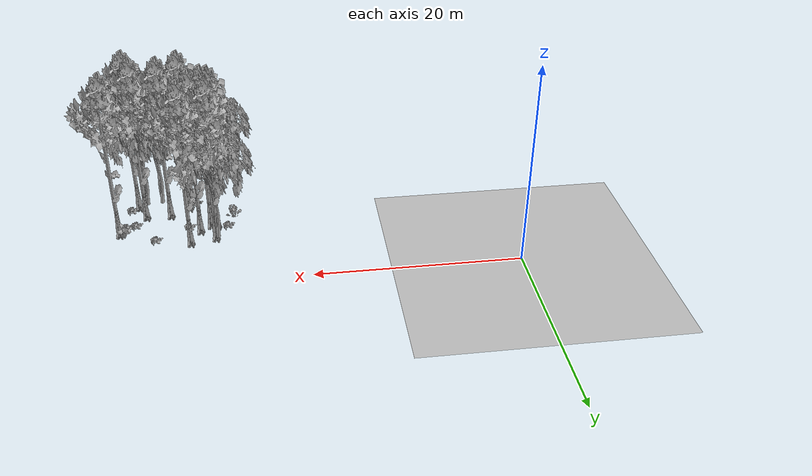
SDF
<sdf version="1.7">
 <world name="default">
  <model name="ground_plane">
   <static>1</static>
   <link name="link">
    <collision name="collision">
     <pose>-50 0 0 0 -0 0</pose>
     <geometry><plane><normal>0 0 1</normal><size>80 80</size></plane></geometry>
     <surface><contact><ode><min_depth>0.01</min_depth><max_vel>0</max_vel></ode></contact></surface>
    </collision>
    <visual name="grass">
     <cast_shadows>0</cast_shadows>
     <geometry>
      <mesh>
       <scale>0.46714285714285714 0.46714285714285714 0.1</scale>
       <uri>file://grass_plane/meshes/grass_plane.dae</uri>
      </mesh>
     </geometry>
    </visual>
   </link>
  </model>
  <model name="Tree 1">
   <static>1</static>
   <pose>28.80075504005869 -7.506337468141254 0 1.57079 -0 0</pose>
   <link name="link">
    <collision name="collision">
     <geometry><mesh><scale>3.5 5 3.5</scale><uri>model://tree_2/meshes/tree_2.obj</uri></mesh></geometry>
    </collision>
    <visual name="visual">
     <geometry><mesh><scale>3.5 5 3.5</scale><uri>model://tree_2/meshes/tree_2.obj</uri></mesh></geometry>
    </visual>
   </link>
  </model>
  <model name="Tree 9">
   <static>1</static>
   <pose>37.17106486879085 -14.391199536497233 0 1.57079 -0 0</pose>
   <link name="link">
    <collision name="collision">
     <geometry><mesh><scale>3.5 5 3.5</scale><uri>model://tree_9/meshes/tree_9.obj</uri></mesh></geometry>
    </collision>
    <visual name="visual">
     <geometry><mesh><scale>3.5 5 3.5</scale><uri>model://tree_9/meshes/tree_9.obj</uri></mesh></geometry>
    </visual>
   </link>
  </model>
  <model name="Tree 70">
   <static>1</static>
   <pose>29.149824359034497 -7.708322593570912 0 1.57079 -0 0</pose>
   <link name="link">
    <collision name="collision">
     <geometry><mesh><scale>3.5 5 3.5</scale><uri>model://tree_9/meshes/tree_9.obj</uri></mesh></geometry>
    </collision>
    <visual name="visual">
     <geometry><mesh><scale>3.5 5 3.5</scale><uri>model://tree_9/meshes/tree_9.obj</uri></mesh></geometry>
    </visual>
   </link>
  </model>
  <model name="Tree 81">
   <static>1</static>
   <pose>36.16068138048058 -14.542542175766265 0 1.57079 -0 0</pose>
   <link name="link">
    <collision name="collision">
     <geometry><mesh><scale>3.5 5 3.5</scale><uri>model://tree_2/meshes/tree_2.obj</uri></mesh></geometry>
    </collision>
    <visual name="visual">
     <geometry><mesh><scale>3.5 5 3.5</scale><uri>model://tree_2/meshes/tree_2.obj</uri></mesh></geometry>
    </visual>
   </link>
  </model>
  <model name="Tree 147">
   <static>1</static>
   <pose>29.018853832329683 -9.82467138672149 0 1.57079 -0 0</pose>
   <link name="link">
    <collision name="collision">
     <geometry><mesh><scale>3.5 5 3.5</scale><uri>model://tree_9/meshes/tree_9.obj</uri></mesh></geometry>
    </collision>
    <visual name="visual">
     <geometry><mesh><scale>3.5 5 3.5</scale><uri>model://tree_9/meshes/tree_9.obj</uri></mesh></geometry>
    </visual>
   </link>
  </model>
  <model name="Tree 185">
   <static>1</static>
   <pose>36.29012174374765 -12.450209287275989 0 1.57079 -0 0</pose>
   <link name="link">
    <collision name="collision">
     <geometry><mesh><scale>3.5 5 3.5</scale><uri>model://tree_9/meshes/tree_9.obj</uri></mesh></geometry>
    </collision>
    <visual name="visual">
     <geometry><mesh><scale>3.5 5 3.5</scale><uri>model://tree_9/meshes/tree_9.obj</uri></mesh></geometry>
    </visual>
   </link>
  </model>
  <model name="Tree 196">
   <static>1</static>
   <pose>33.81599212156803 -12.416178314699174 0 1.57079 -0 0</pose>
   <link name="link">
    <collision name="collision">
     <geometry><mesh><scale>3.5 5 3.5</scale><uri>model://tree_9/meshes/tree_9.obj</uri></mesh></geometry>
    </collision>
    <visual name="visual">
     <geometry><mesh><scale>3.5 5 3.5</scale><uri>model://tree_9/meshes/tree_9.obj</uri></mesh></geometry>
    </visual>
   </link>
  </model>
  <model name="Tree 285">
   <static>1</static>
   <pose>38.732439656846964 -9.502334767794789 0 1.57079 -0 0</pose>
   <link name="link">
    <collision name="collision">
     <geometry><mesh><scale>3.5 5 3.5</scale><uri>model://tree_9/meshes/tree_9.obj</uri></mesh></geometry>
    </collision>
    <visual name="visual">
     <geometry><mesh><scale>3.5 5 3.5</scale><uri>model://tree_9/meshes/tree_9.obj</uri></mesh></geometry>
    </visual>
   </link>
  </model>
  <model name="Tree 367">
   <static>1</static>
   <pose>31.96777590210391 -13.636727416459848 0 1.57079 -0 0</pose>
   <link name="link">
    <collision name="collision">
     <geometry><mesh><scale>3.5 5 3.5</scale><uri>model://tree_9/meshes/tree_9.obj</uri></mesh></geometry>
    </collision>
    <visual name="visual">
     <geometry><mesh><scale>3.5 5 3.5</scale><uri>model://tree_9/meshes/tree_9.obj</uri></mesh></geometry>
    </visual>
   </link>
  </model>
  <model name="Tree 456">
   <static>1</static>
   <pose>31.613340963540352 -7.111634324474856 0 1.57079 -0 0</pose>
   <link name="link">
    <collision name="collision">
     <geometry><mesh><scale>3.5 5 3.5</scale><uri>model://tree_9/meshes/tree_9.obj</uri></mesh></geometry>
    </collision>
    <visual name="visual">
     <geometry><mesh><scale>3.5 5 3.5</scale><uri>model://tree_9/meshes/tree_9.obj</uri></mesh></geometry>
    </visual>
   </link>
  </model>
  <model name="Tree 469">
   <static>1</static>
   <pose>30.706468461002302 -9.180775817107254 0 1.57079 -0 0</pose>
   <link name="link">
    <collision name="collision">
     <geometry><mesh><scale>3.5 5 3.5</scale><uri>model://tree_9/meshes/tree_9.obj</uri></mesh></geometry>
    </collision>
    <visual name="visual">
     <geometry><mesh><scale>3.5 5 3.5</scale><uri>model://tree_9/meshes/tree_9.obj</uri></mesh></geometry>
    </visual>
   </link>
  </model>
  <model name="Tree 486">
   <static>1</static>
   <pose>28.90766877080148 -15.21959154940707 0 1.57079 -0 0</pose>
   <link name="link">
    <collision name="collision">
     <geometry><mesh><scale>3.5 5 3.5</scale><uri>model://tree_2/meshes/tree_2.obj</uri></mesh></geometry>
    </collision>
    <visual name="visual">
     <geometry><mesh><scale>3.5 5 3.5</scale><uri>model://tree_2/meshes/tree_2.obj</uri></mesh></geometry>
    </visual>
   </link>
  </model>
  <model name="Tree 509">
   <static>1</static>
   <pose>29.6809190330829 -10.061550964780999 0 1.57079 -0 0</pose>
   <link name="link">
    <collision name="collision">
     <geometry><mesh><scale>3.5 5 3.5</scale><uri>model://tree_9/meshes/tree_9.obj</uri></mesh></geometry>
    </collision>
    <visual name="visual">
     <geometry><mesh><scale>3.5 5 3.5</scale><uri>model://tree_9/meshes/tree_9.obj</uri></mesh></geometry>
    </visual>
   </link>
  </model>
  <model name="Tree 628">
   <static>1</static>
   <pose>34.65834588369786 -14.695035102071685 0 1.57079 -0 0</pose>
   <link name="link">
    <collision name="collision">
     <geometry><mesh><scale>3.5 5 3.5</scale><uri>model://tree_2/meshes/tree_2.obj</uri></mesh></geometry>
    </collision>
    <visual name="visual">
     <geometry><mesh><scale>3.5 5 3.5</scale><uri>model://tree_2/meshes/tree_2.obj</uri></mesh></geometry>
    </visual>
   </link>
  </model>
  <model name="Bush 28">
   <static>1</static>
   <pose>37.10576850806645 -10.44714324948675 0 1.57079 -0 0</pose>
   <link name="link">
    <collision name="collision">
     <geometry><mesh><scale>2 2 2</scale><uri>model://bush_2/meshes/bush_2.obj</uri></mesh></geometry>
     <surface><contact><collide_without_contact>false</collide_without_contact></contact></surface>
    </collision>
    <visual name="visual">
     <geometry><mesh><scale>2 2 2</scale><uri>model://bush_2/meshes/bush_2.obj</uri></mesh></geometry>
    </visual>
   </link>
  </model>
  <model name="Bush 114">
   <static>1</static>
   <pose>38.08446805151337 -10.208008974037774 0 1.57079 -0 0</pose>
   <link name="link">
    <collision name="collision">
     <geometry><mesh><scale>2 2 2</scale><uri>model://bush_2/meshes/bush_2.obj</uri></mesh></geometry>
     <surface><contact><collide_without_contact>false</collide_without_contact></contact></surface>
    </collision>
    <visual name="visual">
     <geometry><mesh><scale>2 2 2</scale><uri>model://bush_2/meshes/bush_2.obj</uri></mesh></geometry>
    </visual>
   </link>
  </model>
  <model name="Bush 152">
   <static>1</static>
   <pose>27.339391754524513 -10.951504275225894 0 1.57079 -0 0</pose>
   <link name="link">
    <collision name="collision">
     <geometry><mesh><scale>2 2 2</scale><uri>model://bush_4/meshes/bush_4.obj</uri></mesh></geometry>
     <surface><contact><collide_without_contact>false</collide_without_contact></contact></surface>
    </collision>
    <visual name="visual">
     <geometry><mesh><scale>2 2 2</scale><uri>model://bush_4/meshes/bush_4.obj</uri></mesh></geometry>
    </visual>
   </link>
  </model>
  <model name="Bush 163">
   <static>1</static>
   <pose>37.750375752142304 -13.376766424040483 0 1.57079 -0 0</pose>
   <link name="link">
    <collision name="collision">
     <geometry><mesh><scale>2 2 2</scale><uri>model://bush_2/meshes/bush_2.obj</uri></mesh></geometry>
     <surface><contact><collide_without_contact>false</collide_without_contact></contact></surface>
    </collision>
    <visual name="visual">
     <geometry><mesh><scale>2 2 2</scale><uri>model://bush_2/meshes/bush_2.obj</uri></mesh></geometry>
    </visual>
   </link>
  </model>
  <model name="Bush 333">
   <static>1</static>
   <pose>31.221706762936606 -13.993633142931607 0 1.57079 -0 0</pose>
   <link name="link">
    <collision name="collision">
     <geometry><mesh><scale>2 2 2</scale><uri>model://bush_2/meshes/bush_2.obj</uri></mesh></geometry>
     <surface><contact><collide_without_contact>false</collide_without_contact></contact></surface>
    </collision>
    <visual name="visual">
     <geometry><mesh><scale>2 2 2</scale><uri>model://bush_2/meshes/bush_2.obj</uri></mesh></geometry>
    </visual>
   </link>
  </model>
  <model name="Bush 362">
   <static>1</static>
   <pose>27.908062689105193 -9.442508230674331 0 1.57079 -0 0</pose>
   <link name="link">
    <collision name="collision">
     <geometry><mesh><scale>2 2 2</scale><uri>model://bush_2/meshes/bush_2.obj</uri></mesh></geometry>
     <surface><contact><collide_without_contact>false</collide_without_contact></contact></surface>
    </collision>
    <visual name="visual">
     <geometry><mesh><scale>2 2 2</scale><uri>model://bush_2/meshes/bush_2.obj</uri></mesh></geometry>
    </visual>
   </link>
  </model>
  <model name="Bush 442">
   <static>1</static>
   <pose>38.109422226352706 -8.374378253921932 0 1.57079 -0 0</pose>
   <link name="link">
    <collision name="collision">
     <geometry><mesh><scale>2 2 2</scale><uri>model://bush_0/meshes/bush_0.obj</uri></mesh></geometry>
     <surface><contact><collide_without_contact>false</collide_without_contact></contact></surface>
    </collision>
    <visual name="visual">
     <geometry><mesh><scale>2 2 2</scale><uri>model://bush_0/meshes/bush_0.obj</uri></mesh></geometry>
    </visual>
   </link>
  </model>
  <model name="Bush 531">
   <static>1</static>
   <pose>34.98095815295201 -7.580105520534971 0 1.57079 -0 0</pose>
   <link name="link">
    <collision name="collision">
     <geometry><mesh><scale>2 2 2</scale><uri>model://bush_2/meshes/bush_2.obj</uri></mesh></geometry>
     <surface><contact><collide_without_contact>false</collide_without_contact></contact></surface>
    </collision>
    <visual name="visual">
     <geometry><mesh><scale>2 2 2</scale><uri>model://bush_2/meshes/bush_2.obj</uri></mesh></geometry>
    </visual>
   </link>
  </model>
  <model name="Bush 565">
   <static>1</static>
   <pose>31.757096850504453 -9.585681945938013 0 1.57079 -0 0</pose>
   <link name="link">
    <collision name="collision">
     <geometry><mesh><scale>2 2 2</scale><uri>model://bush_2/meshes/bush_2.obj</uri></mesh></geometry>
     <surface><contact><collide_without_contact>false</collide_without_contact></contact></surface>
    </collision>
    <visual name="visual">
     <geometry><mesh><scale>2 2 2</scale><uri>model://bush_2/meshes/bush_2.obj</uri></mesh></geometry>
    </visual>
   </link>
  </model>
 </world>
</sdf>
